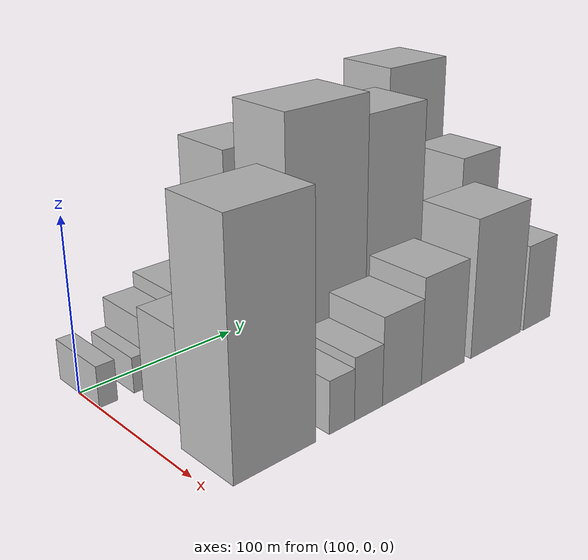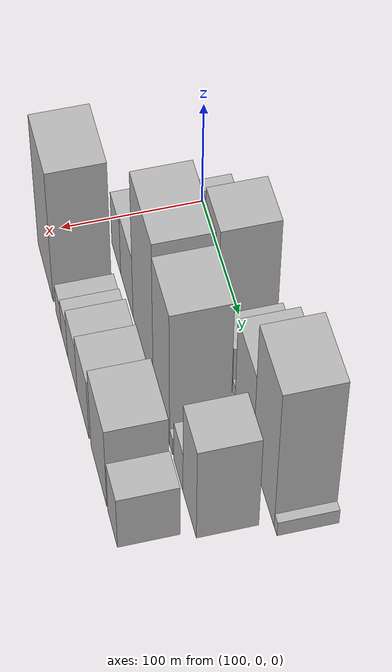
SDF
<sdf version="1.6">
 <world name="default">
  <model name="building_16">
   <static>1</static>
   <pose>100.0000 5.5530 0 0.000000 0.000000 0.000000</pose>
   <link name="link">
    <pose>0 0 12.00 0 0 0</pose>
    <collision name="collision"><geometry><box><size>40.0000 11.0014 24.0000</size></box></geometry></collision>
    <visual name="visual">
     <cast_shadows>0</cast_shadows>
     <geometry><box><size>40.0000 11.0014 24.0000</size></box></geometry>
     <material>
      <script>
       <uri>model://HANNAS_wall/materials/scripts</uri>
       <uri>model://HANNAS_wall/materials/textures</uri>
       <name>vrc/HANNAS_wall</name>
      </script>
     </material>
    </visual>
   </link>
  </model>
  <model name="building_17">
   <static>1</static>
   <pose>100.0000 25.5360 0 0.000000 0.000000 0.000000</pose>
   <link name="link">
    <pose>0 0 10.50 0 0 0</pose>
    <collision name="collision"><geometry><box><size>40.0000 8.9645 21.0000</size></box></geometry></collision>
    <visual name="visual">
     <cast_shadows>0</cast_shadows>
     <geometry><box><size>40.0000 8.9645 21.0000</size></box></geometry>
     <material>
      <script>
       <uri>model://HANNAS_wall/materials/scripts</uri>
       <uri>model://HANNAS_wall/materials/textures</uri>
       <name>vrc/HANNAS_wall</name>
      </script>
     </material>
    </visual>
   </link>
  </model>
  <model name="building_18">
   <static>1</static>
   <pose>100.0000 39.9722 0 0.000000 0.000000 0.000000</pose>
   <link name="link">
    <pose>0 0 19.50 0 0 0</pose>
    <collision name="collision"><geometry><box><size>40.0000 19.9079 39.0000</size></box></geometry></collision>
    <visual name="visual">
     <cast_shadows>0</cast_shadows>
     <geometry><box><size>40.0000 19.9079 39.0000</size></box></geometry>
     <material>
      <script>
       <uri>model://HANNAS_wall/materials/scripts</uri>
       <uri>model://HANNAS_wall/materials/textures</uri>
       <name>vrc/HANNAS_wall</name>
      </script>
     </material>
    </visual>
   </link>
  </model>
  <model name="building_19">
   <static>1</static>
   <pose>100.0000 63.5394 0 0.000000 0.000000 0.000000</pose>
   <link name="link">
    <pose>0 0 24.00 0 0 0</pose>
    <collision name="collision"><geometry><box><size>40.0000 27.2266 48.0000</size></box></geometry></collision>
    <visual name="visual">
     <cast_shadows>0</cast_shadows>
     <geometry><box><size>40.0000 27.2266 48.0000</size></box></geometry>
     <material>
      <script>
       <uri>model://HANNAS_wall/materials/scripts</uri>
       <uri>model://HANNAS_wall/materials/textures</uri>
       <name>vrc/HANNAS_wall</name>
      </script>
     </material>
    </visual>
   </link>
  </model>
  <model name="building_20">
   <static>1</static>
   <pose>100.0000 103.5589 0 0.000000 0.000000 0.000000</pose>
   <link name="link">
    <pose>0 0 60.00 0 0 0</pose>
    <collision name="collision"><geometry><box><size>40.0000 36.8124 120.0000</size></box></geometry></collision>
    <visual name="visual">
     <cast_shadows>0</cast_shadows>
     <geometry><box><size>40.0000 36.8124 120.0000</size></box></geometry>
     <material>
      <script>
       <uri>model://HANNAS_wall/materials/scripts</uri>
       <uri>model://HANNAS_wall/materials/textures</uri>
       <name>vrc/HANNAS_wall</name>
      </script>
     </material>
    </visual>
   </link>
  </model>
  <model name="building_21">
   <static>1</static>
   <pose>100.0000 146.1554 0 0.000000 0.000000 0.000000</pose>
   <link name="link">
    <pose>0 0 24.00 0 0 0</pose>
    <collision name="collision"><geometry><box><size>40.0000 28.3807 48.0000</size></box></geometry></collision>
    <visual name="visual">
     <cast_shadows>0</cast_shadows>
     <geometry><box><size>40.0000 28.3807 48.0000</size></box></geometry>
     <material>
      <script>
       <uri>model://HANNAS_wall/materials/scripts</uri>
       <uri>model://HANNAS_wall/materials/textures</uri>
       <name>vrc/HANNAS_wall</name>
      </script>
     </material>
    </visual>
   </link>
  </model>
  <model name="building_22">
   <static>1</static>
   <pose>100.0000 163.9372 0 0.000000 0.000000 0.000000</pose>
   <link name="link">
    <pose>0 0 7.50 0 0 0</pose>
    <collision name="collision"><geometry><box><size>40.0000 7.1829 15.0000</size></box></geometry></collision>
    <visual name="visual">
     <cast_shadows>0</cast_shadows>
     <geometry><box><size>40.0000 7.1829 15.0000</size></box></geometry>
     <material>
      <script>
       <uri>model://HANNAS_wall/materials/scripts</uri>
       <uri>model://HANNAS_wall/materials/textures</uri>
       <name>vrc/HANNAS_wall</name>
      </script>
     </material>
    </visual>
   </link>
  </model>
  <model name="building_23">
   <static>1</static>
   <pose>100.0000 190.2346 0 0.000000 0.000000 0.000000</pose>
   <link name="link">
    <pose>0 0 45.00 0 0 0</pose>
    <collision name="collision"><geometry><box><size>40.0000 45.4119 90.0000</size></box></geometry></collision>
    <visual name="visual">
     <cast_shadows>0</cast_shadows>
     <geometry><box><size>40.0000 45.4119 90.0000</size></box></geometry>
     <material>
      <script>
       <uri>model://HANNAS_wall/materials/scripts</uri>
       <uri>model://HANNAS_wall/materials/textures</uri>
       <name>vrc/HANNAS_wall</name>
      </script>
     </material>
    </visual>
   </link>
  </model>
  <model name="building_24">
   <static>1</static>
   <pose>100.0000 238.6542 0 0.000000 0.000000 0.000000</pose>
   <link name="link">
    <pose>0 0 72.00 0 0 0</pose>
    <collision name="collision"><geometry><box><size>40.0000 51.4272 144.0000</size></box></geometry></collision>
    <visual name="visual">
     <cast_shadows>0</cast_shadows>
     <geometry><box><size>40.0000 51.4272 144.0000</size></box></geometry>
     <material>
      <script>
       <uri>model://HANNAS_wall/materials/scripts</uri>
       <uri>model://HANNAS_wall/materials/textures</uri>
       <name>vrc/HANNAS_wall</name>
      </script>
     </material>
    </visual>
   </link>
  </model>
  <model name="building_25">
   <static>1</static>
   <pose>100.0000 267.7505 0 0.000000 0.000000 0.000000</pose>
   <link name="link">
    <pose>0 0 7.50 0 0 0</pose>
    <collision name="collision"><geometry><box><size>40.0000 6.7653 15.0000</size></box></geometry></collision>
    <visual name="visual">
     <cast_shadows>0</cast_shadows>
     <geometry><box><size>40.0000 6.7653 15.0000</size></box></geometry>
     <material>
      <script>
       <uri>model://HANNAS_wall/materials/scripts</uri>
       <uri>model://HANNAS_wall/materials/textures</uri>
       <name>vrc/HANNAS_wall</name>
      </script>
     </material>
    </visual>
   </link>
  </model>
  <model name="building_51">
   <static>1</static>
   <pose>149.0000 34.7668 0 0.000000 0.000000 0.000000</pose>
   <link name="link">
    <pose>0 0 27.00 0 0 0</pose>
    <collision name="collision"><geometry><box><size>40.0000 27.5992 54.0000</size></box></geometry></collision>
    <visual name="visual">
     <cast_shadows>0</cast_shadows>
     <geometry><box><size>40.0000 27.5992 54.0000</size></box></geometry>
     <material>
      <script>
       <uri>model://HANNAS_wall/materials/scripts</uri>
       <uri>model://HANNAS_wall/materials/textures</uri>
       <name>vrc/HANNAS_wall</name>
      </script>
     </material>
    </visual>
   </link>
  </model>
  <model name="building_52">
   <static>1</static>
   <pose>149.0000 67.2513 0 0.000000 0.000000 0.000000</pose>
   <link name="link">
    <pose>0 0 31.50 0 0 0</pose>
    <collision name="collision"><geometry><box><size>40.0000 37.3699 63.0000</size></box></geometry></collision>
    <visual name="visual">
     <cast_shadows>0</cast_shadows>
     <geometry><box><size>40.0000 37.3699 63.0000</size></box></geometry>
     <material>
      <script>
       <uri>model://HANNAS_wall/materials/scripts</uri>
       <uri>model://HANNAS_wall/materials/textures</uri>
       <name>vrc/HANNAS_wall</name>
      </script>
     </material>
    </visual>
   </link>
  </model>
  <model name="building_53">
   <static>1</static>
   <pose>149.0000 115.2380 0 0.000000 0.000000 0.000000</pose>
   <link name="link">
    <pose>0 0 75.00 0 0 0</pose>
    <collision name="collision"><geometry><box><size>40.0000 58.6036 150.0000</size></box></geometry></collision>
    <visual name="visual">
     <cast_shadows>0</cast_shadows>
     <geometry><box><size>40.0000 58.6036 150.0000</size></box></geometry>
     <material>
      <script>
       <uri>model://HANNAS_wall/materials/scripts</uri>
       <uri>model://HANNAS_wall/materials/textures</uri>
       <name>vrc/HANNAS_wall</name>
      </script>
     </material>
    </visual>
   </link>
  </model>
  <model name="building_54">
   <static>1</static>
   <pose>149.0000 167.3251 0 0.000000 0.000000 0.000000</pose>
   <link name="link">
    <pose>0 0 69.00 0 0 0</pose>
    <collision name="collision"><geometry><box><size>40.0000 45.5707 138.0000</size></box></geometry></collision>
    <visual name="visual">
     <cast_shadows>0</cast_shadows>
     <geometry><box><size>40.0000 45.5707 138.0000</size></box></geometry>
     <material>
      <script>
       <uri>model://HANNAS_wall/materials/scripts</uri>
       <uri>model://HANNAS_wall/materials/textures</uri>
       <name>vrc/HANNAS_wall</name>
      </script>
     </material>
    </visual>
   </link>
  </model>
  <model name="building_55">
   <static>1</static>
   <pose>149.0000 193.9636 0 0.000000 0.000000 0.000000</pose>
   <link name="link">
    <pose>0 0 9.00 0 0 0</pose>
    <collision name="collision"><geometry><box><size>40.0000 7.7062 18.0000</size></box></geometry></collision>
    <visual name="visual">
     <cast_shadows>0</cast_shadows>
     <geometry><box><size>40.0000 7.7062 18.0000</size></box></geometry>
     <material>
      <script>
       <uri>model://HANNAS_wall/materials/scripts</uri>
       <uri>model://HANNAS_wall/materials/textures</uri>
       <name>vrc/HANNAS_wall</name>
      </script>
     </material>
    </visual>
   </link>
  </model>
  <model name="building_56">
   <static>1</static>
   <pose>149.0000 213.7841 0 0.000000 0.000000 0.000000</pose>
   <link name="link">
    <pose>0 0 21.00 0 0 0</pose>
    <collision name="collision"><geometry><box><size>40.0000 23.9349 42.0000</size></box></geometry></collision>
    <visual name="visual">
     <cast_shadows>0</cast_shadows>
     <geometry><box><size>40.0000 23.9349 42.0000</size></box></geometry>
     <material>
      <script>
       <uri>model://HANNAS_wall/materials/scripts</uri>
       <uri>model://HANNAS_wall/materials/textures</uri>
       <name>vrc/HANNAS_wall</name>
      </script>
     </material>
    </visual>
   </link>
  </model>
  <model name="building_57">
   <static>1</static>
   <pose>149.0000 243.3430 0 0.000000 0.000000 0.000000</pose>
   <link name="link">
    <pose>0 0 48.00 0 0 0</pose>
    <collision name="collision"><geometry><box><size>40.0000 35.1829 96.0000</size></box></geometry></collision>
    <visual name="visual">
     <cast_shadows>0</cast_shadows>
     <geometry><box><size>40.0000 35.1829 96.0000</size></box></geometry>
     <material>
      <script>
       <uri>model://HANNAS_wall/materials/scripts</uri>
       <uri>model://HANNAS_wall/materials/textures</uri>
       <name>vrc/HANNAS_wall</name>
      </script>
     </material>
    </visual>
   </link>
  </model>
  <model name="building_83">
   <static>1</static>
   <pose>198.0000 35.3207 0 0.000000 0.000000 0.000000</pose>
   <link name="link">
    <pose>0 0 66.00 0 0 0</pose>
    <collision name="collision"><geometry><box><size>40.0000 50.7863 132.0000</size></box></geometry></collision>
    <visual name="visual">
     <cast_shadows>0</cast_shadows>
     <geometry><box><size>40.0000 50.7863 132.0000</size></box></geometry>
     <material>
      <script>
       <uri>model://HANNAS_wall/materials/scripts</uri>
       <uri>model://HANNAS_wall/materials/textures</uri>
       <name>vrc/HANNAS_wall</name>
      </script>
     </material>
    </visual>
   </link>
  </model>
  <model name="building_84">
   <static>1</static>
   <pose>198.0000 78.4062 0 0.000000 0.000000 0.000000</pose>
   <link name="link">
    <pose>0 0 15.00 0 0 0</pose>
    <collision name="collision"><geometry><box><size>40.0000 17.3847 30.0000</size></box></geometry></collision>
    <visual name="visual">
     <cast_shadows>0</cast_shadows>
     <geometry><box><size>40.0000 17.3847 30.0000</size></box></geometry>
     <material>
      <script>
       <uri>model://HANNAS_wall/materials/scripts</uri>
       <uri>model://HANNAS_wall/materials/textures</uri>
       <name>vrc/HANNAS_wall</name>
      </script>
     </material>
    </visual>
   </link>
  </model>
  <model name="building_85">
   <static>1</static>
   <pose>198.0000 97.2508 0 0.000000 0.000000 0.000000</pose>
   <link name="link">
    <pose>0 0 18.00 0 0 0</pose>
    <collision name="collision"><geometry><box><size>40.0000 20.3046 36.0000</size></box></geometry></collision>
    <visual name="visual">
     <cast_shadows>0</cast_shadows>
     <geometry><box><size>40.0000 20.3046 36.0000</size></box></geometry>
     <material>
      <script>
       <uri>model://HANNAS_wall/materials/scripts</uri>
       <uri>model://HANNAS_wall/materials/textures</uri>
       <name>vrc/HANNAS_wall</name>
      </script>
     </material>
    </visual>
   </link>
  </model>
  <model name="building_86">
   <static>1</static>
   <pose>198.0000 122.4750 0 0.000000 0.000000 0.000000</pose>
   <link name="link">
    <pose>0 0 25.50 0 0 0</pose>
    <collision name="collision"><geometry><box><size>40.0000 30.1437 51.0000</size></box></geometry></collision>
    <visual name="visual">
     <cast_shadows>0</cast_shadows>
     <geometry><box><size>40.0000 30.1437 51.0000</size></box></geometry>
     <material>
      <script>
       <uri>model://HANNAS_wall/materials/scripts</uri>
       <uri>model://HANNAS_wall/materials/textures</uri>
       <name>vrc/HANNAS_wall</name>
      </script>
     </material>
    </visual>
   </link>
  </model>
  <model name="building_87">
   <static>1</static>
   <pose>198.0000 155.5126 0 0.000000 0.000000 0.000000</pose>
   <link name="link">
    <pose>0 0 31.50 0 0 0</pose>
    <collision name="collision"><geometry><box><size>40.0000 35.9316 63.0000</size></box></geometry></collision>
    <visual name="visual">
     <cast_shadows>0</cast_shadows>
     <geometry><box><size>40.0000 35.9316 63.0000</size></box></geometry>
     <material>
      <script>
       <uri>model://HANNAS_wall/materials/scripts</uri>
       <uri>model://HANNAS_wall/materials/textures</uri>
       <name>vrc/HANNAS_wall</name>
      </script>
     </material>
    </visual>
   </link>
  </model>
  <model name="building_88">
   <static>1</static>
   <pose>198.0000 202.6078 0 0.000000 0.000000 0.000000</pose>
   <link name="link">
    <pose>0 0 42.00 0 0 0</pose>
    <collision name="collision"><geometry><box><size>40.0000 46.2587 84.0000</size></box></geometry></collision>
    <visual name="visual">
     <cast_shadows>0</cast_shadows>
     <geometry><box><size>40.0000 46.2587 84.0000</size></box></geometry>
     <material>
      <script>
       <uri>model://HANNAS_wall/materials/scripts</uri>
       <uri>model://HANNAS_wall/materials/textures</uri>
       <name>vrc/HANNAS_wall</name>
      </script>
     </material>
    </visual>
   </link>
  </model>
  <model name="building_89">
   <static>1</static>
   <pose>198.0000 242.3399 0 0.000000 0.000000 0.000000</pose>
   <link name="link">
    <pose>0 0 27.00 0 0 0</pose>
    <collision name="collision"><geometry><box><size>40.0000 27.2055 54.0000</size></box></geometry></collision>
    <visual name="visual">
     <cast_shadows>0</cast_shadows>
     <geometry><box><size>40.0000 27.2055 54.0000</size></box></geometry>
     <material>
      <script>
       <uri>model://HANNAS_wall/materials/scripts</uri>
       <uri>model://HANNAS_wall/materials/textures</uri>
       <name>vrc/HANNAS_wall</name>
      </script>
     </material>
    </visual>
   </link>
  </model>
 </world>
</sdf>
